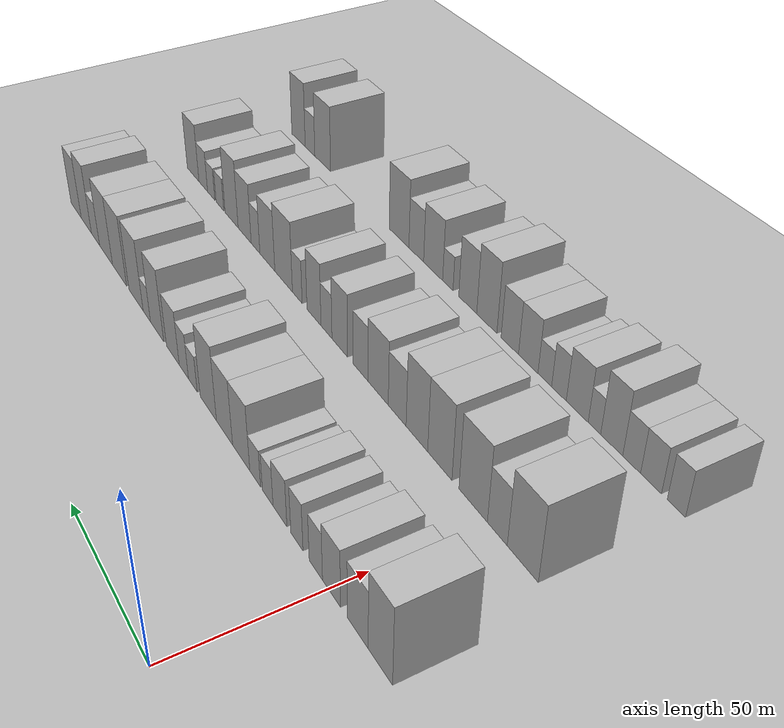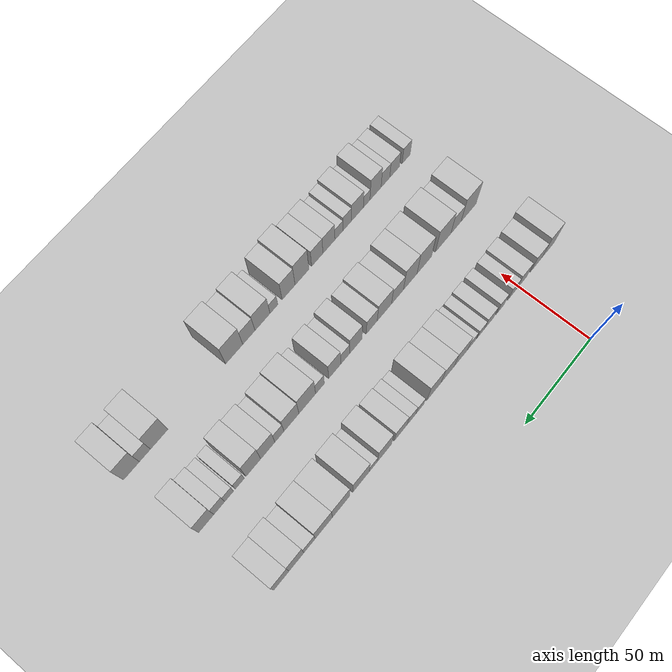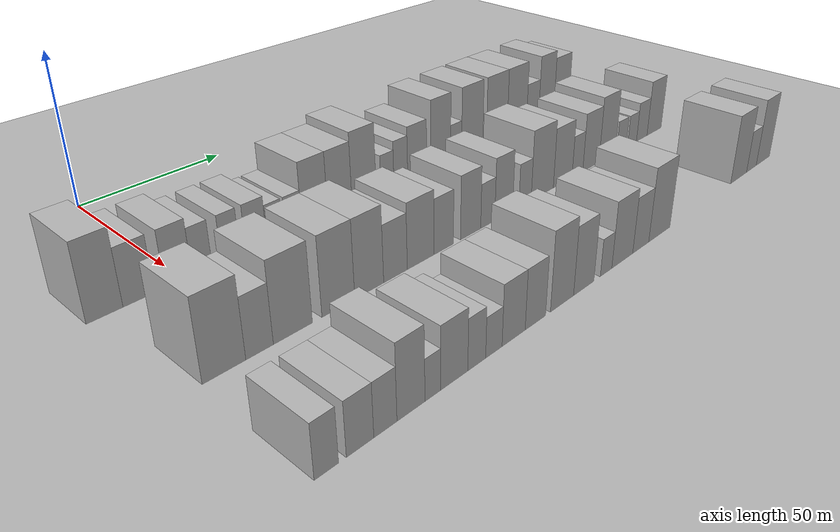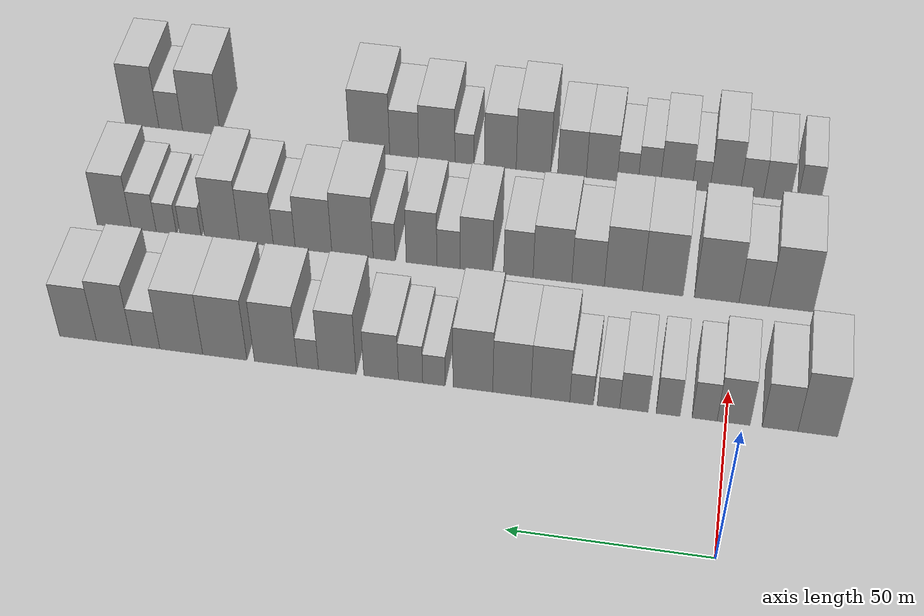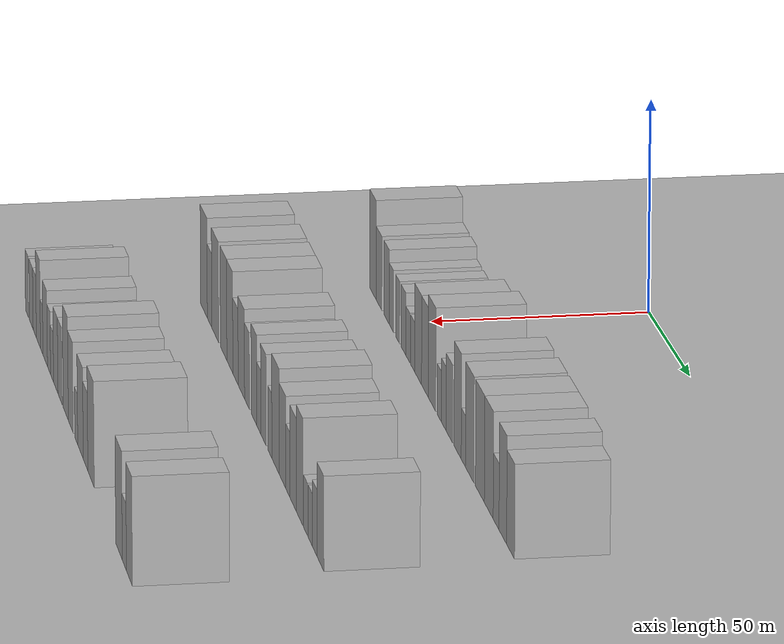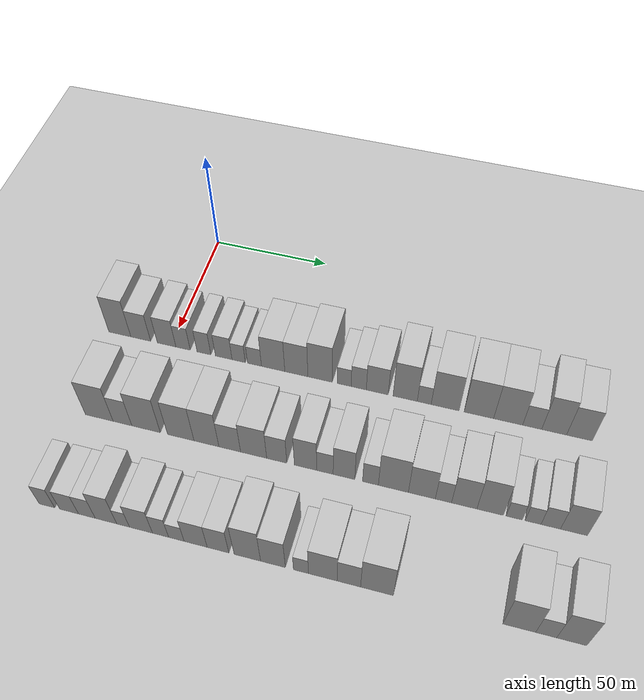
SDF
<sdf version="1.6">
 <world name="default">
  <include><name>ground_plane_1</name><uri>model://HANNAS_ground_plane</uri></include>
  <include>
   <name>ground_plane_2</name>
   <uri>model://HANNAS_ground_plane</uri>
   <pose>100 0 0  0 0 0</pose>
  </include>
  <model name="building_38">
   <static>1</static>
   <pose>50.0000 -22.6203 0 0.000000 0.000000 0.000000</pose>
   <link name="link">
    <pose>0 0 12.00 0 0 0</pose>
    <collision name="collision"><geometry><box><size>20.0000 9.8466 24.0000</size></box></geometry></collision>
    <visual name="visual">
     <cast_shadows>0</cast_shadows>
     <geometry><box><size>20.0000 9.8466 24.0000</size></box></geometry>
     <material>
      <script>
       <uri>model://HANNAS_wall/materials/scripts</uri>
       <uri>model://HANNAS_wall/materials/textures</uri>
       <name>vrc/HANNAS_wall</name>
      </script>
     </material>
    </visual>
   </link>
  </model>
  <model name="building_39">
   <static>1</static>
   <pose>50.0000 -13.2915 0 0.000000 0.000000 0.000000</pose>
   <link name="link">
    <pose>0 0 9.00 0 0 0</pose>
    <collision name="collision"><geometry><box><size>20.0000 8.8109 18.0000</size></box></geometry></collision>
    <visual name="visual">
     <cast_shadows>0</cast_shadows>
     <geometry><box><size>20.0000 8.8109 18.0000</size></box></geometry>
     <material>
      <script>
       <uri>model://HANNAS_wall/materials/scripts</uri>
       <uri>model://HANNAS_wall/materials/textures</uri>
       <name>vrc/HANNAS_wall</name>
      </script>
     </material>
    </visual>
   </link>
  </model>
  <model name="building_40">
   <static>1</static>
   <pose>50.0000 -1.7778 0 0.000000 0.000000 0.000000</pose>
   <link name="link">
    <pose>0 0 9.00 0 0 0</pose>
    <collision name="collision"><geometry><box><size>20.0000 8.2166 18.0000</size></box></geometry></collision>
    <visual name="visual">
     <cast_shadows>0</cast_shadows>
     <geometry><box><size>20.0000 8.2166 18.0000</size></box></geometry>
     <material>
      <script>
       <uri>model://HANNAS_wall/materials/scripts</uri>
       <uri>model://HANNAS_wall/materials/textures</uri>
       <name>vrc/HANNAS_wall</name>
      </script>
     </material>
    </visual>
   </link>
  </model>
  <model name="building_41">
   <static>1</static>
   <pose>50.0000 5.4653 0 0.000000 0.000000 0.000000</pose>
   <link name="link">
    <pose>0 0 7.50 0 0 0</pose>
    <collision name="collision"><geometry><box><size>20.0000 6.2696 15.0000</size></box></geometry></collision>
    <visual name="visual">
     <cast_shadows>0</cast_shadows>
     <geometry><box><size>20.0000 6.2696 15.0000</size></box></geometry>
     <material>
      <script>
       <uri>model://HANNAS_wall/materials/scripts</uri>
       <uri>model://HANNAS_wall/materials/textures</uri>
       <name>vrc/HANNAS_wall</name>
      </script>
     </material>
    </visual>
   </link>
  </model>
  <model name="building_42">
   <static>1</static>
   <pose>50.0000 14.6106 0 0.000000 0.000000 0.000000</pose>
   <link name="link">
    <pose>0 0 7.50 0 0 0</pose>
    <collision name="collision"><geometry><box><size>20.0000 6.0210 15.0000</size></box></geometry></collision>
    <visual name="visual">
     <cast_shadows>0</cast_shadows>
     <geometry><box><size>20.0000 6.0210 15.0000</size></box></geometry>
     <material>
      <script>
       <uri>model://HANNAS_wall/materials/scripts</uri>
       <uri>model://HANNAS_wall/materials/textures</uri>
       <name>vrc/HANNAS_wall</name>
      </script>
     </material>
    </visual>
   </link>
  </model>
  <model name="building_43">
   <static>1</static>
   <pose>50.0000 23.2075 0 0.000000 0.000000 0.000000</pose>
   <link name="link">
    <pose>0 0 7.50 0 0 0</pose>
    <collision name="collision"><geometry><box><size>20.0000 7.1727 15.0000</size></box></geometry></collision>
    <visual name="visual">
     <cast_shadows>0</cast_shadows>
     <geometry><box><size>20.0000 7.1727 15.0000</size></box></geometry>
     <material>
      <script>
       <uri>model://HANNAS_wall/materials/scripts</uri>
       <uri>model://HANNAS_wall/materials/textures</uri>
       <name>vrc/HANNAS_wall</name>
      </script>
     </material>
    </visual>
   </link>
  </model>
  <model name="building_44">
   <static>1</static>
   <pose>50.0000 29.6395 0 0.000000 0.000000 0.000000</pose>
   <link name="link">
    <pose>0 0 6.00 0 0 0</pose>
    <collision name="collision"><geometry><box><size>20.0000 5.6913 12.0000</size></box></geometry></collision>
    <visual name="visual">
     <cast_shadows>0</cast_shadows>
     <geometry><box><size>20.0000 5.6913 12.0000</size></box></geometry>
     <material>
      <script>
       <uri>model://HANNAS_wall/materials/scripts</uri>
       <uri>model://HANNAS_wall/materials/textures</uri>
       <name>vrc/HANNAS_wall</name>
      </script>
     </material>
    </visual>
   </link>
  </model>
  <model name="building_45">
   <static>1</static>
   <pose>50.0000 36.4650 0 0.000000 0.000000 0.000000</pose>
   <link name="link">
    <pose>0 0 6.00 0 0 0</pose>
    <collision name="collision"><geometry><box><size>20.0000 5.9598 12.0000</size></box></geometry></collision>
    <visual name="visual">
     <cast_shadows>0</cast_shadows>
     <geometry><box><size>20.0000 5.9598 12.0000</size></box></geometry>
     <material>
      <script>
       <uri>model://HANNAS_wall/materials/scripts</uri>
       <uri>model://HANNAS_wall/materials/textures</uri>
       <name>vrc/HANNAS_wall</name>
      </script>
     </material>
    </visual>
   </link>
  </model>
  <model name="building_46">
   <static>1</static>
   <pose>50.0000 44.4060 0 0.000000 0.000000 0.000000</pose>
   <link name="link">
    <pose>0 0 10.50 0 0 0</pose>
    <collision name="collision"><geometry><box><size>20.0000 9.9222 21.0000</size></box></geometry></collision>
    <visual name="visual">
     <cast_shadows>0</cast_shadows>
     <geometry><box><size>20.0000 9.9222 21.0000</size></box></geometry>
     <material>
      <script>
       <uri>model://HANNAS_wall/materials/scripts</uri>
       <uri>model://HANNAS_wall/materials/textures</uri>
       <name>vrc/HANNAS_wall</name>
      </script>
     </material>
    </visual>
   </link>
  </model>
  <model name="building_47">
   <static>1</static>
   <pose>50.0000 54.2389 0 0.000000 0.000000 0.000000</pose>
   <link name="link">
    <pose>0 0 10.50 0 0 0</pose>
    <collision name="collision"><geometry><box><size>20.0000 9.7437 21.0000</size></box></geometry></collision>
    <visual name="visual">
     <cast_shadows>0</cast_shadows>
     <geometry><box><size>20.0000 9.7437 21.0000</size></box></geometry>
     <material>
      <script>
       <uri>model://HANNAS_wall/materials/scripts</uri>
       <uri>model://HANNAS_wall/materials/textures</uri>
       <name>vrc/HANNAS_wall</name>
      </script>
     </material>
    </visual>
   </link>
  </model>
  <model name="building_48">
   <static>1</static>
   <pose>50.0000 64.2303 0 0.000000 0.000000 0.000000</pose>
   <link name="link">
    <pose>0 0 12.00 0 0 0</pose>
    <collision name="collision"><geometry><box><size>20.0000 10.2391 24.0000</size></box></geometry></collision>
    <visual name="visual">
     <cast_shadows>0</cast_shadows>
     <geometry><box><size>20.0000 10.2391 24.0000</size></box></geometry>
     <material>
      <script>
       <uri>model://HANNAS_wall/materials/scripts</uri>
       <uri>model://HANNAS_wall/materials/textures</uri>
       <name>vrc/HANNAS_wall</name>
      </script>
     </material>
    </visual>
   </link>
  </model>
  <model name="building_49">
   <static>1</static>
   <pose>50.0000 74.2547 0 0.000000 0.000000 0.000000</pose>
   <link name="link">
    <pose>0 0 6.00 0 0 0</pose>
    <collision name="collision"><geometry><box><size>20.0000 5.8098 12.0000</size></box></geometry></collision>
    <visual name="visual">
     <cast_shadows>0</cast_shadows>
     <geometry><box><size>20.0000 5.8098 12.0000</size></box></geometry>
     <material>
      <script>
       <uri>model://HANNAS_wall/materials/scripts</uri>
       <uri>model://HANNAS_wall/materials/textures</uri>
       <name>vrc/HANNAS_wall</name>
      </script>
     </material>
    </visual>
   </link>
  </model>
  <model name="building_50">
   <static>1</static>
   <pose>50.0000 80.3056 0 0.000000 0.000000 0.000000</pose>
   <link name="link">
    <pose>0 0 7.50 0 0 0</pose>
    <collision name="collision"><geometry><box><size>20.0000 6.2919 15.0000</size></box></geometry></collision>
    <visual name="visual">
     <cast_shadows>0</cast_shadows>
     <geometry><box><size>20.0000 6.2919 15.0000</size></box></geometry>
     <material>
      <script>
       <uri>model://HANNAS_wall/materials/scripts</uri>
       <uri>model://HANNAS_wall/materials/textures</uri>
       <name>vrc/HANNAS_wall</name>
      </script>
     </material>
    </visual>
   </link>
  </model>
  <model name="building_51">
   <static>1</static>
   <pose>50.0000 87.9464 0 0.000000 0.000000 0.000000</pose>
   <link name="link">
    <pose>0 0 9.00 0 0 0</pose>
    <collision name="collision"><geometry><box><size>20.0000 8.9897 18.0000</size></box></geometry></collision>
    <visual name="visual">
     <cast_shadows>0</cast_shadows>
     <geometry><box><size>20.0000 8.9897 18.0000</size></box></geometry>
     <material>
      <script>
       <uri>model://HANNAS_wall/materials/scripts</uri>
       <uri>model://HANNAS_wall/materials/textures</uri>
       <name>vrc/HANNAS_wall</name>
      </script>
     </material>
    </visual>
   </link>
  </model>
  <model name="building_52">
   <static>1</static>
   <pose>50.0000 99.3654 0 0.000000 0.000000 0.000000</pose>
   <link name="link">
    <pose>0 0 12.00 0 0 0</pose>
    <collision name="collision"><geometry><box><size>20.0000 9.8483 24.0000</size></box></geometry></collision>
    <visual name="visual">
     <cast_shadows>0</cast_shadows>
     <geometry><box><size>20.0000 9.8483 24.0000</size></box></geometry>
     <material>
      <script>
       <uri>model://HANNAS_wall/materials/scripts</uri>
       <uri>model://HANNAS_wall/materials/textures</uri>
       <name>vrc/HANNAS_wall</name>
      </script>
     </material>
    </visual>
   </link>
  </model>
  <model name="building_53">
   <static>1</static>
   <pose>50.0000 107.1000 0 0.000000 0.000000 0.000000</pose>
   <link name="link">
    <pose>0 0 6.00 0 0 0</pose>
    <collision name="collision"><geometry><box><size>20.0000 5.6209 12.0000</size></box></geometry></collision>
    <visual name="visual">
     <cast_shadows>0</cast_shadows>
     <geometry><box><size>20.0000 5.6209 12.0000</size></box></geometry>
     <material>
      <script>
       <uri>model://HANNAS_wall/materials/scripts</uri>
       <uri>model://HANNAS_wall/materials/textures</uri>
       <name>vrc/HANNAS_wall</name>
      </script>
     </material>
    </visual>
   </link>
  </model>
  <model name="building_54">
   <static>1</static>
   <pose>50.0000 115.5343 0 0.000000 0.000000 0.000000</pose>
   <link name="link">
    <pose>0 0 12.00 0 0 0</pose>
    <collision name="collision"><geometry><box><size>20.0000 11.2476 24.0000</size></box></geometry></collision>
    <visual name="visual">
     <cast_shadows>0</cast_shadows>
     <geometry><box><size>20.0000 11.2476 24.0000</size></box></geometry>
     <material>
      <script>
       <uri>model://HANNAS_wall/materials/scripts</uri>
       <uri>model://HANNAS_wall/materials/textures</uri>
       <name>vrc/HANNAS_wall</name>
      </script>
     </material>
    </visual>
   </link>
  </model>
  <model name="building_55">
   <static>1</static>
   <pose>50.0000 129.0157 0 0.000000 0.000000 0.000000</pose>
   <link name="link">
    <pose>0 0 12.00 0 0 0</pose>
    <collision name="collision"><geometry><box><size>20.0000 11.7152 24.0000</size></box></geometry></collision>
    <visual name="visual">
     <cast_shadows>0</cast_shadows>
     <geometry><box><size>20.0000 11.7152 24.0000</size></box></geometry>
     <material>
      <script>
       <uri>model://HANNAS_wall/materials/scripts</uri>
       <uri>model://HANNAS_wall/materials/textures</uri>
       <name>vrc/HANNAS_wall</name>
      </script>
     </material>
    </visual>
   </link>
  </model>
  <model name="building_56">
   <static>1</static>
   <pose>50.0000 140.5876 0 0.000000 0.000000 0.000000</pose>
   <link name="link">
    <pose>0 0 12.00 0 0 0</pose>
    <collision name="collision"><geometry><box><size>20.0000 11.4286 24.0000</size></box></geometry></collision>
    <visual name="visual">
     <cast_shadows>0</cast_shadows>
     <geometry><box><size>20.0000 11.4286 24.0000</size></box></geometry>
     <material>
      <script>
       <uri>model://HANNAS_wall/materials/scripts</uri>
       <uri>model://HANNAS_wall/materials/textures</uri>
       <name>vrc/HANNAS_wall</name>
      </script>
     </material>
    </visual>
   </link>
  </model>
  <model name="building_57">
   <static>1</static>
   <pose>50.0000 150.0243 0 0.000000 0.000000 0.000000</pose>
   <link name="link">
    <pose>0 0 7.50 0 0 0</pose>
    <collision name="collision"><geometry><box><size>20.0000 7.4448 15.0000</size></box></geometry></collision>
    <visual name="visual">
     <cast_shadows>0</cast_shadows>
     <geometry><box><size>20.0000 7.4448 15.0000</size></box></geometry>
     <material>
      <script>
       <uri>model://HANNAS_wall/materials/scripts</uri>
       <uri>model://HANNAS_wall/materials/textures</uri>
       <name>vrc/HANNAS_wall</name>
      </script>
     </material>
    </visual>
   </link>
  </model>
  <model name="building_58">
   <static>1</static>
   <pose>50.0000 158.5561 0 0.000000 0.000000 0.000000</pose>
   <link name="link">
    <pose>0 0 12.00 0 0 0</pose>
    <collision name="collision"><geometry><box><size>20.0000 9.6188 24.0000</size></box></geometry></collision>
    <visual name="visual">
     <cast_shadows>0</cast_shadows>
     <geometry><box><size>20.0000 9.6188 24.0000</size></box></geometry>
     <material>
      <script>
       <uri>model://HANNAS_wall/materials/scripts</uri>
       <uri>model://HANNAS_wall/materials/textures</uri>
       <name>vrc/HANNAS_wall</name>
      </script>
     </material>
    </visual>
   </link>
  </model>
  <model name="building_59">
   <static>1</static>
   <pose>50.0000 168.3214 0 0.000000 0.000000 0.000000</pose>
   <link name="link">
    <pose>0 0 10.50 0 0 0</pose>
    <collision name="collision"><geometry><box><size>20.0000 9.9117 21.0000</size></box></geometry></collision>
    <visual name="visual">
     <cast_shadows>0</cast_shadows>
     <geometry><box><size>20.0000 9.9117 21.0000</size></box></geometry>
     <material>
      <script>
       <uri>model://HANNAS_wall/materials/scripts</uri>
       <uri>model://HANNAS_wall/materials/textures</uri>
       <name>vrc/HANNAS_wall</name>
      </script>
     </material>
    </visual>
   </link>
  </model>
  <model name="building_127">
   <static>1</static>
   <pose>90.0000 -14.6284 0 0.000000 0.000000 0.000000</pose>
   <link name="link">
    <pose>0 0 12.00 0 0 0</pose>
    <collision name="collision"><geometry><box><size>20.0000 11.7034 24.0000</size></box></geometry></collision>
    <visual name="visual">
     <cast_shadows>0</cast_shadows>
     <geometry><box><size>20.0000 11.7034 24.0000</size></box></geometry>
     <material>
      <script>
       <uri>model://HANNAS_wall/materials/scripts</uri>
       <uri>model://HANNAS_wall/materials/textures</uri>
       <name>vrc/HANNAS_wall</name>
      </script>
     </material>
    </visual>
   </link>
  </model>
  <model name="building_128">
   <static>1</static>
   <pose>90.0000 -4.8487 0 0.000000 0.000000 0.000000</pose>
   <link name="link">
    <pose>0 0 9.00 0 0 0</pose>
    <collision name="collision"><geometry><box><size>20.0000 7.8560 18.0000</size></box></geometry></collision>
    <visual name="visual">
     <cast_shadows>0</cast_shadows>
     <geometry><box><size>20.0000 7.8560 18.0000</size></box></geometry>
     <material>
      <script>
       <uri>model://HANNAS_wall/materials/scripts</uri>
       <uri>model://HANNAS_wall/materials/textures</uri>
       <name>vrc/HANNAS_wall</name>
      </script>
     </material>
    </visual>
   </link>
  </model>
  <model name="building_129">
   <static>1</static>
   <pose>90.0000 4.9935 0 0.000000 0.000000 0.000000</pose>
   <link name="link">
    <pose>0 0 12.00 0 0 0</pose>
    <collision name="collision"><geometry><box><size>20.0000 11.8285 24.0000</size></box></geometry></collision>
    <visual name="visual">
     <cast_shadows>0</cast_shadows>
     <geometry><box><size>20.0000 11.8285 24.0000</size></box></geometry>
     <material>
      <script>
       <uri>model://HANNAS_wall/materials/scripts</uri>
       <uri>model://HANNAS_wall/materials/textures</uri>
       <name>vrc/HANNAS_wall</name>
      </script>
     </material>
    </visual>
   </link>
  </model>
  <model name="building_130">
   <static>1</static>
   <pose>90.0000 19.3446 0 0.000000 0.000000 0.000000</pose>
   <link name="link">
    <pose>0 0 12.00 0 0 0</pose>
    <collision name="collision"><geometry><box><size>20.0000 10.8736 24.0000</size></box></geometry></collision>
    <visual name="visual">
     <cast_shadows>0</cast_shadows>
     <geometry><box><size>20.0000 10.8736 24.0000</size></box></geometry>
     <material>
      <script>
       <uri>model://HANNAS_wall/materials/scripts</uri>
       <uri>model://HANNAS_wall/materials/textures</uri>
       <name>vrc/HANNAS_wall</name>
      </script>
     </material>
    </visual>
   </link>
  </model>
  <model name="building_131">
   <static>1</static>
   <pose>90.0000 29.8597 0 0.000000 0.000000 0.000000</pose>
   <link name="link">
    <pose>0 0 12.00 0 0 0</pose>
    <collision name="collision"><geometry><box><size>20.0000 10.1567 24.0000</size></box></geometry></collision>
    <visual name="visual">
     <cast_shadows>0</cast_shadows>
     <geometry><box><size>20.0000 10.1567 24.0000</size></box></geometry>
     <material>
      <script>
       <uri>model://HANNAS_wall/materials/scripts</uri>
       <uri>model://HANNAS_wall/materials/textures</uri>
       <name>vrc/HANNAS_wall</name>
      </script>
     </material>
    </visual>
   </link>
  </model>
  <model name="building_132">
   <static>1</static>
   <pose>90.0000 39.3220 0 0.000000 0.000000 0.000000</pose>
   <link name="link">
    <pose>0 0 9.00 0 0 0</pose>
    <collision name="collision"><geometry><box><size>20.0000 8.7679 18.0000</size></box></geometry></collision>
    <visual name="visual">
     <cast_shadows>0</cast_shadows>
     <geometry><box><size>20.0000 8.7679 18.0000</size></box></geometry>
     <material>
      <script>
       <uri>model://HANNAS_wall/materials/scripts</uri>
       <uri>model://HANNAS_wall/materials/textures</uri>
       <name>vrc/HANNAS_wall</name>
      </script>
     </material>
    </visual>
   </link>
  </model>
  <model name="building_133">
   <static>1</static>
   <pose>90.0000 48.9421 0 0.000000 0.000000 0.000000</pose>
   <link name="link">
    <pose>0 0 10.50 0 0 0</pose>
    <collision name="collision"><geometry><box><size>20.0000 10.4723 21.0000</size></box></geometry></collision>
    <visual name="visual">
     <cast_shadows>0</cast_shadows>
     <geometry><box><size>20.0000 10.4723 21.0000</size></box></geometry>
     <material>
      <script>
       <uri>model://HANNAS_wall/materials/scripts</uri>
       <uri>model://HANNAS_wall/materials/textures</uri>
       <name>vrc/HANNAS_wall</name>
      </script>
     </material>
    </visual>
   </link>
  </model>
  <model name="building_134">
   <static>1</static>
   <pose>90.0000 58.1688 0 0.000000 0.000000 0.000000</pose>
   <link name="link">
    <pose>0 0 9.00 0 0 0</pose>
    <collision name="collision"><geometry><box><size>20.0000 7.9811 18.0000</size></box></geometry></collision>
    <visual name="visual">
     <cast_shadows>0</cast_shadows>
     <geometry><box><size>20.0000 7.9811 18.0000</size></box></geometry>
     <material>
      <script>
       <uri>model://HANNAS_wall/materials/scripts</uri>
       <uri>model://HANNAS_wall/materials/textures</uri>
       <name>vrc/HANNAS_wall</name>
      </script>
     </material>
    </visual>
   </link>
  </model>
  <model name="building_135">
   <static>1</static>
   <pose>90.0000 69.5651 0 0.000000 0.000000 0.000000</pose>
   <link name="link">
    <pose>0 0 10.50 0 0 0</pose>
    <collision name="collision"><geometry><box><size>20.0000 8.8115 21.0000</size></box></geometry></collision>
    <visual name="visual">
     <cast_shadows>0</cast_shadows>
     <geometry><box><size>20.0000 8.8115 21.0000</size></box></geometry>
     <material>
      <script>
       <uri>model://HANNAS_wall/materials/scripts</uri>
       <uri>model://HANNAS_wall/materials/textures</uri>
       <name>vrc/HANNAS_wall</name>
      </script>
     </material>
    </visual>
   </link>
  </model>
  <model name="building_136">
   <static>1</static>
   <pose>90.0000 77.1643 0 0.000000 0.000000 0.000000</pose>
   <link name="link">
    <pose>0 0 7.50 0 0 0</pose>
    <collision name="collision"><geometry><box><size>20.0000 6.3870 15.0000</size></box></geometry></collision>
    <visual name="visual">
     <cast_shadows>0</cast_shadows>
     <geometry><box><size>20.0000 6.3870 15.0000</size></box></geometry>
     <material>
      <script>
       <uri>model://HANNAS_wall/materials/scripts</uri>
       <uri>model://HANNAS_wall/materials/textures</uri>
       <name>vrc/HANNAS_wall</name>
      </script>
     </material>
    </visual>
   </link>
  </model>
  <model name="building_137">
   <static>1</static>
   <pose>90.0000 84.5685 0 0.000000 0.000000 0.000000</pose>
   <link name="link">
    <pose>0 0 10.50 0 0 0</pose>
    <collision name="collision"><geometry><box><size>20.0000 8.4214 21.0000</size></box></geometry></collision>
    <visual name="visual">
     <cast_shadows>0</cast_shadows>
     <geometry><box><size>20.0000 8.4214 21.0000</size></box></geometry>
     <material>
      <script>
       <uri>model://HANNAS_wall/materials/scripts</uri>
       <uri>model://HANNAS_wall/materials/textures</uri>
       <name>vrc/HANNAS_wall</name>
      </script>
     </material>
    </visual>
   </link>
  </model>
  <model name="building_138">
   <static>1</static>
   <pose>90.0000 94.8266 0 0.000000 0.000000 0.000000</pose>
   <link name="link">
    <pose>0 0 7.50 0 0 0</pose>
    <collision name="collision"><geometry><box><size>20.0000 6.0948 15.0000</size></box></geometry></collision>
    <visual name="visual">
     <cast_shadows>0</cast_shadows>
     <geometry><box><size>20.0000 6.0948 15.0000</size></box></geometry>
     <material>
      <script>
       <uri>model://HANNAS_wall/materials/scripts</uri>
       <uri>model://HANNAS_wall/materials/textures</uri>
       <name>vrc/HANNAS_wall</name>
      </script>
     </material>
    </visual>
   </link>
  </model>
  <model name="building_139">
   <static>1</static>
   <pose>90.0000 103.6072 0 0.000000 0.000000 0.000000</pose>
   <link name="link">
    <pose>0 0 12.00 0 0 0</pose>
    <collision name="collision"><geometry><box><size>20.0000 11.4663 24.0000</size></box></geometry></collision>
    <visual name="visual">
     <cast_shadows>0</cast_shadows>
     <geometry><box><size>20.0000 11.4663 24.0000</size></box></geometry>
     <material>
      <script>
       <uri>model://HANNAS_wall/materials/scripts</uri>
       <uri>model://HANNAS_wall/materials/textures</uri>
       <name>vrc/HANNAS_wall</name>
      </script>
     </material>
    </visual>
   </link>
  </model>
  <model name="building_140">
   <static>1</static>
   <pose>90.0000 114.4278 0 0.000000 0.000000 0.000000</pose>
   <link name="link">
    <pose>0 0 10.50 0 0 0</pose>
    <collision name="collision"><geometry><box><size>20.0000 10.1750 21.0000</size></box></geometry></collision>
    <visual name="visual">
     <cast_shadows>0</cast_shadows>
     <geometry><box><size>20.0000 10.1750 21.0000</size></box></geometry>
     <material>
      <script>
       <uri>model://HANNAS_wall/materials/scripts</uri>
       <uri>model://HANNAS_wall/materials/textures</uri>
       <name>vrc/HANNAS_wall</name>
      </script>
     </material>
    </visual>
   </link>
  </model>
  <model name="building_141">
   <static>1</static>
   <pose>90.0000 122.5689 0 0.000000 0.000000 0.000000</pose>
   <link name="link">
    <pose>0 0 7.50 0 0 0</pose>
    <collision name="collision"><geometry><box><size>20.0000 6.1072 15.0000</size></box></geometry></collision>
    <visual name="visual">
     <cast_shadows>0</cast_shadows>
     <geometry><box><size>20.0000 6.1072 15.0000</size></box></geometry>
     <material>
      <script>
       <uri>model://HANNAS_wall/materials/scripts</uri>
       <uri>model://HANNAS_wall/materials/textures</uri>
       <name>vrc/HANNAS_wall</name>
      </script>
     </material>
    </visual>
   </link>
  </model>
  <model name="building_142">
   <static>1</static>
   <pose>90.0000 130.3557 0 0.000000 0.000000 0.000000</pose>
   <link name="link">
    <pose>0 0 10.50 0 0 0</pose>
    <collision name="collision"><geometry><box><size>20.0000 9.4663 21.0000</size></box></geometry></collision>
    <visual name="visual">
     <cast_shadows>0</cast_shadows>
     <geometry><box><size>20.0000 9.4663 21.0000</size></box></geometry>
     <material>
      <script>
       <uri>model://HANNAS_wall/materials/scripts</uri>
       <uri>model://HANNAS_wall/materials/textures</uri>
       <name>vrc/HANNAS_wall</name>
      </script>
     </material>
    </visual>
   </link>
  </model>
  <model name="building_143">
   <static>1</static>
   <pose>90.0000 140.0069 0 0.000000 0.000000 0.000000</pose>
   <link name="link">
    <pose>0 0 12.00 0 0 0</pose>
    <collision name="collision"><geometry><box><size>20.0000 9.8362 24.0000</size></box></geometry></collision>
    <visual name="visual">
     <cast_shadows>0</cast_shadows>
     <geometry><box><size>20.0000 9.8362 24.0000</size></box></geometry>
     <material>
      <script>
       <uri>model://HANNAS_wall/materials/scripts</uri>
       <uri>model://HANNAS_wall/materials/textures</uri>
       <name>vrc/HANNAS_wall</name>
      </script>
     </material>
    </visual>
   </link>
  </model>
  <model name="building_144">
   <static>1</static>
   <pose>90.0000 148.9128 0 0.000000 0.000000 0.000000</pose>
   <link name="link">
    <pose>0 0 6.00 0 0 0</pose>
    <collision name="collision"><geometry><box><size>20.0000 5.9755 12.0000</size></box></geometry></collision>
    <visual name="visual">
     <cast_shadows>0</cast_shadows>
     <geometry><box><size>20.0000 5.9755 12.0000</size></box></geometry>
     <material>
      <script>
       <uri>model://HANNAS_wall/materials/scripts</uri>
       <uri>model://HANNAS_wall/materials/textures</uri>
       <name>vrc/HANNAS_wall</name>
      </script>
     </material>
    </visual>
   </link>
  </model>
  <model name="building_145">
   <static>1</static>
   <pose>90.0000 155.7903 0 0.000000 0.000000 0.000000</pose>
   <link name="link">
    <pose>0 0 6.00 0 0 0</pose>
    <collision name="collision"><geometry><box><size>20.0000 5.7797 12.0000</size></box></geometry></collision>
    <visual name="visual">
     <cast_shadows>0</cast_shadows>
     <geometry><box><size>20.0000 5.7797 12.0000</size></box></geometry>
     <material>
      <script>
       <uri>model://HANNAS_wall/materials/scripts</uri>
       <uri>model://HANNAS_wall/materials/textures</uri>
       <name>vrc/HANNAS_wall</name>
      </script>
     </material>
    </visual>
   </link>
  </model>
  <model name="building_146">
   <static>1</static>
   <pose>90.0000 162.2097 0 0.000000 0.000000 0.000000</pose>
   <link name="link">
    <pose>0 0 7.50 0 0 0</pose>
    <collision name="collision"><geometry><box><size>20.0000 7.0590 15.0000</size></box></geometry></collision>
    <visual name="visual">
     <cast_shadows>0</cast_shadows>
     <geometry><box><size>20.0000 7.0590 15.0000</size></box></geometry>
     <material>
      <script>
       <uri>model://HANNAS_wall/materials/scripts</uri>
       <uri>model://HANNAS_wall/materials/textures</uri>
       <name>vrc/HANNAS_wall</name>
      </script>
     </material>
    </visual>
   </link>
  </model>
  <model name="building_147">
   <static>1</static>
   <pose>90.0000 170.6210 0 0.000000 0.000000 0.000000</pose>
   <link name="link">
    <pose>0 0 10.50 0 0 0</pose>
    <collision name="collision"><geometry><box><size>20.0000 9.7636 21.0000</size></box></geometry></collision>
    <visual name="visual">
     <cast_shadows>0</cast_shadows>
     <geometry><box><size>20.0000 9.7636 21.0000</size></box></geometry>
     <material>
      <script>
       <uri>model://HANNAS_wall/materials/scripts</uri>
       <uri>model://HANNAS_wall/materials/textures</uri>
       <name>vrc/HANNAS_wall</name>
      </script>
     </material>
    </visual>
   </link>
  </model>
  <model name="building_213">
   <static>1</static>
   <pose>130.0000 -18.1410 0 0.000000 0.000000 0.000000</pose>
   <link name="link">
    <pose>0 0 7.50 0 0 0</pose>
    <collision name="collision"><geometry><box><size>20.0000 6.2490 15.0000</size></box></geometry></collision>
    <visual name="visual">
     <cast_shadows>0</cast_shadows>
     <geometry><box><size>20.0000 6.2490 15.0000</size></box></geometry>
     <material>
      <script>
       <uri>model://HANNAS_wall/materials/scripts</uri>
       <uri>model://HANNAS_wall/materials/textures</uri>
       <name>vrc/HANNAS_wall</name>
      </script>
     </material>
    </visual>
   </link>
  </model>
  <model name="building_214">
   <static>1</static>
   <pose>130.0000 -9.2805 0 0.000000 0.000000 0.000000</pose>
   <link name="link">
    <pose>0 0 7.50 0 0 0</pose>
    <collision name="collision"><geometry><box><size>20.0000 7.4720 15.0000</size></box></geometry></collision>
    <visual name="visual">
     <cast_shadows>0</cast_shadows>
     <geometry><box><size>20.0000 7.4720 15.0000</size></box></geometry>
     <material>
      <script>
       <uri>model://HANNAS_wall/materials/scripts</uri>
       <uri>model://HANNAS_wall/materials/textures</uri>
       <name>vrc/HANNAS_wall</name>
      </script>
     </material>
    </visual>
   </link>
  </model>
  <model name="building_215">
   <static>1</static>
   <pose>130.0000 -2.2367 0 0.000000 0.000000 0.000000</pose>
   <link name="link">
    <pose>0 0 7.50 0 0 0</pose>
    <collision name="collision"><geometry><box><size>20.0000 6.6157 15.0000</size></box></geometry></collision>
    <visual name="visual">
     <cast_shadows>0</cast_shadows>
     <geometry><box><size>20.0000 6.6157 15.0000</size></box></geometry>
     <material>
      <script>
       <uri>model://HANNAS_wall/materials/scripts</uri>
       <uri>model://HANNAS_wall/materials/textures</uri>
       <name>vrc/HANNAS_wall</name>
      </script>
     </material>
    </visual>
   </link>
  </model>
  <model name="building_216">
   <static>1</static>
   <pose>130.0000 5.2896 0 0.000000 0.000000 0.000000</pose>
   <link name="link">
    <pose>0 0 10.50 0 0 0</pose>
    <collision name="collision"><geometry><box><size>20.0000 8.4369 21.0000</size></box></geometry></collision>
    <visual name="visual">
     <cast_shadows>0</cast_shadows>
     <geometry><box><size>20.0000 8.4369 21.0000</size></box></geometry>
     <material>
      <script>
       <uri>model://HANNAS_wall/materials/scripts</uri>
       <uri>model://HANNAS_wall/materials/textures</uri>
       <name>vrc/HANNAS_wall</name>
      </script>
     </material>
    </visual>
   </link>
  </model>
  <model name="building_217">
   <static>1</static>
   <pose>130.0000 11.9843 0 0.000000 0.000000 0.000000</pose>
   <link name="link">
    <pose>0 0 6.00 0 0 0</pose>
    <collision name="collision"><geometry><box><size>20.0000 4.9525 12.0000</size></box></geometry></collision>
    <visual name="visual">
     <cast_shadows>0</cast_shadows>
     <geometry><box><size>20.0000 4.9525 12.0000</size></box></geometry>
     <material>
      <script>
       <uri>model://HANNAS_wall/materials/scripts</uri>
       <uri>model://HANNAS_wall/materials/textures</uri>
       <name>vrc/HANNAS_wall</name>
      </script>
     </material>
    </visual>
   </link>
  </model>
  <model name="building_218">
   <static>1</static>
   <pose>130.0000 18.9444 0 0.000000 0.000000 0.000000</pose>
   <link name="link">
    <pose>0 0 9.00 0 0 0</pose>
    <collision name="collision"><geometry><box><size>20.0000 8.9676 18.0000</size></box></geometry></collision>
    <visual name="visual">
     <cast_shadows>0</cast_shadows>
     <geometry><box><size>20.0000 8.9676 18.0000</size></box></geometry>
     <material>
      <script>
       <uri>model://HANNAS_wall/materials/scripts</uri>
       <uri>model://HANNAS_wall/materials/textures</uri>
       <name>vrc/HANNAS_wall</name>
      </script>
     </material>
    </visual>
   </link>
  </model>
  <model name="building_219">
   <static>1</static>
   <pose>130.0000 26.5376 0 0.000000 0.000000 0.000000</pose>
   <link name="link">
    <pose>0 0 7.50 0 0 0</pose>
    <collision name="collision"><geometry><box><size>20.0000 6.2189 15.0000</size></box></geometry></collision>
    <visual name="visual">
     <cast_shadows>0</cast_shadows>
     <geometry><box><size>20.0000 6.2189 15.0000</size></box></geometry>
     <material>
      <script>
       <uri>model://HANNAS_wall/materials/scripts</uri>
       <uri>model://HANNAS_wall/materials/textures</uri>
       <name>vrc/HANNAS_wall</name>
      </script>
     </material>
    </visual>
   </link>
  </model>
  <model name="building_220">
   <static>1</static>
   <pose>130.0000 32.6141 0 0.000000 0.000000 0.000000</pose>
   <link name="link">
    <pose>0 0 6.00 0 0 0</pose>
    <collision name="collision"><geometry><box><size>20.0000 5.9340 12.0000</size></box></geometry></collision>
    <visual name="visual">
     <cast_shadows>0</cast_shadows>
     <geometry><box><size>20.0000 5.9340 12.0000</size></box></geometry>
     <material>
      <script>
       <uri>model://HANNAS_wall/materials/scripts</uri>
       <uri>model://HANNAS_wall/materials/textures</uri>
       <name>vrc/HANNAS_wall</name>
      </script>
     </material>
    </visual>
   </link>
  </model>
  <model name="building_221">
   <static>1</static>
   <pose>130.0000 39.9615 0 0.000000 0.000000 0.000000</pose>
   <link name="link">
    <pose>0 0 9.00 0 0 0</pose>
    <collision name="collision"><geometry><box><size>20.0000 8.7608 18.0000</size></box></geometry></collision>
    <visual name="visual">
     <cast_shadows>0</cast_shadows>
     <geometry><box><size>20.0000 8.7608 18.0000</size></box></geometry>
     <material>
      <script>
       <uri>model://HANNAS_wall/materials/scripts</uri>
       <uri>model://HANNAS_wall/materials/textures</uri>
       <name>vrc/HANNAS_wall</name>
      </script>
     </material>
    </visual>
   </link>
  </model>
  <model name="building_222">
   <static>1</static>
   <pose>130.0000 48.4207 0 0.000000 0.000000 0.000000</pose>
   <link name="link">
    <pose>0 0 9.00 0 0 0</pose>
    <collision name="collision"><geometry><box><size>20.0000 8.1576 18.0000</size></box></geometry></collision>
    <visual name="visual">
     <cast_shadows>0</cast_shadows>
     <geometry><box><size>20.0000 8.1576 18.0000</size></box></geometry>
     <material>
      <script>
       <uri>model://HANNAS_wall/materials/scripts</uri>
       <uri>model://HANNAS_wall/materials/textures</uri>
       <name>vrc/HANNAS_wall</name>
      </script>
     </material>
    </visual>
   </link>
  </model>
  <model name="building_223">
   <static>1</static>
   <pose>130.0000 59.4424 0 0.000000 0.000000 0.000000</pose>
   <link name="link">
    <pose>0 0 12.00 0 0 0</pose>
    <collision name="collision"><geometry><box><size>20.0000 9.8858 24.0000</size></box></geometry></collision>
    <visual name="visual">
     <cast_shadows>0</cast_shadows>
     <geometry><box><size>20.0000 9.8858 24.0000</size></box></geometry>
     <material>
      <script>
       <uri>model://HANNAS_wall/materials/scripts</uri>
       <uri>model://HANNAS_wall/materials/textures</uri>
       <name>vrc/HANNAS_wall</name>
      </script>
     </material>
    </visual>
   </link>
  </model>
  <model name="building_224">
   <static>1</static>
   <pose>130.0000 68.9706 0 0.000000 0.000000 0.000000</pose>
   <link name="link">
    <pose>0 0 10.50 0 0 0</pose>
    <collision name="collision"><geometry><box><size>20.0000 9.1708 21.0000</size></box></geometry></collision>
    <visual name="visual">
     <cast_shadows>0</cast_shadows>
     <geometry><box><size>20.0000 9.1708 21.0000</size></box></geometry>
     <material>
      <script>
       <uri>model://HANNAS_wall/materials/scripts</uri>
       <uri>model://HANNAS_wall/materials/textures</uri>
       <name>vrc/HANNAS_wall</name>
      </script>
     </material>
    </visual>
   </link>
  </model>
  <model name="building_225">
   <static>1</static>
   <pose>130.0000 79.3105 0 0.000000 0.000000 0.000000</pose>
   <link name="link">
    <pose>0 0 6.00 0 0 0</pose>
    <collision name="collision"><geometry><box><size>20.0000 5.5089 12.0000</size></box></geometry></collision>
    <visual name="visual">
     <cast_shadows>0</cast_shadows>
     <geometry><box><size>20.0000 5.5089 12.0000</size></box></geometry>
     <material>
      <script>
       <uri>model://HANNAS_wall/materials/scripts</uri>
       <uri>model://HANNAS_wall/materials/textures</uri>
       <name>vrc/HANNAS_wall</name>
      </script>
     </material>
    </visual>
   </link>
  </model>
  <model name="building_226">
   <static>1</static>
   <pose>130.0000 87.2941 0 0.000000 0.000000 0.000000</pose>
   <link name="link">
    <pose>0 0 10.50 0 0 0</pose>
    <collision name="collision"><geometry><box><size>20.0000 10.4583 21.0000</size></box></geometry></collision>
    <visual name="visual">
     <cast_shadows>0</cast_shadows>
     <geometry><box><size>20.0000 10.4583 21.0000</size></box></geometry>
     <material>
      <script>
       <uri>model://HANNAS_wall/materials/scripts</uri>
       <uri>model://HANNAS_wall/materials/textures</uri>
       <name>vrc/HANNAS_wall</name>
      </script>
     </material>
    </visual>
   </link>
  </model>
  <model name="building_227">
   <static>1</static>
   <pose>130.0000 96.7353 0 0.000000 0.000000 0.000000</pose>
   <link name="link">
    <pose>0 0 9.00 0 0 0</pose>
    <collision name="collision"><geometry><box><size>20.0000 8.4241 18.0000</size></box></geometry></collision>
    <visual name="visual">
     <cast_shadows>0</cast_shadows>
     <geometry><box><size>20.0000 8.4241 18.0000</size></box></geometry>
     <material>
      <script>
       <uri>model://HANNAS_wall/materials/scripts</uri>
       <uri>model://HANNAS_wall/materials/textures</uri>
       <name>vrc/HANNAS_wall</name>
      </script>
     </material>
    </visual>
   </link>
  </model>
  <model name="building_228">
   <static>1</static>
   <pose>130.0000 106.8078 0 0.000000 0.000000 0.000000</pose>
   <link name="link">
    <pose>0 0 12.00 0 0 0</pose>
    <collision name="collision"><geometry><box><size>20.0000 11.7209 24.0000</size></box></geometry></collision>
    <visual name="visual">
     <cast_shadows>0</cast_shadows>
     <geometry><box><size>20.0000 11.7209 24.0000</size></box></geometry>
     <material>
      <script>
       <uri>model://HANNAS_wall/materials/scripts</uri>
       <uri>model://HANNAS_wall/materials/textures</uri>
       <name>vrc/HANNAS_wall</name>
      </script>
     </material>
    </visual>
   </link>
  </model>
  <model name="building_229">
   <static>1</static>
   <pose>130.0000 156.5226 0 0.000000 0.000000 0.000000</pose>
   <link name="link">
    <pose>0 0 12.00 0 0 0</pose>
    <collision name="collision"><geometry><box><size>20.0000 11.2362 24.0000</size></box></geometry></collision>
    <visual name="visual">
     <cast_shadows>0</cast_shadows>
     <geometry><box><size>20.0000 11.2362 24.0000</size></box></geometry>
     <material>
      <script>
       <uri>model://HANNAS_wall/materials/scripts</uri>
       <uri>model://HANNAS_wall/materials/textures</uri>
       <name>vrc/HANNAS_wall</name>
      </script>
     </material>
    </visual>
   </link>
  </model>
  <model name="building_230">
   <static>1</static>
   <pose>130.0000 165.6800 0 0.000000 0.000000 0.000000</pose>
   <link name="link">
    <pose>0 0 7.50 0 0 0</pose>
    <collision name="collision"><geometry><box><size>20.0000 7.0785 15.0000</size></box></geometry></collision>
    <visual name="visual">
     <cast_shadows>0</cast_shadows>
     <geometry><box><size>20.0000 7.0785 15.0000</size></box></geometry>
     <material>
      <script>
       <uri>model://HANNAS_wall/materials/scripts</uri>
       <uri>model://HANNAS_wall/materials/textures</uri>
       <name>vrc/HANNAS_wall</name>
      </script>
     </material>
    </visual>
   </link>
  </model>
  <model name="building_231">
   <static>1</static>
   <pose>130.0000 174.2783 0 0.000000 0.000000 0.000000</pose>
   <link name="link">
    <pose>0 0 12.00 0 0 0</pose>
    <collision name="collision"><geometry><box><size>20.0000 10.1181 24.0000</size></box></geometry></collision>
    <visual name="visual">
     <cast_shadows>0</cast_shadows>
     <geometry><box><size>20.0000 10.1181 24.0000</size></box></geometry>
     <material>
      <script>
       <uri>model://HANNAS_wall/materials/scripts</uri>
       <uri>model://HANNAS_wall/materials/textures</uri>
       <name>vrc/HANNAS_wall</name>
      </script>
     </material>
    </visual>
   </link>
  </model>
 </world>
</sdf>
